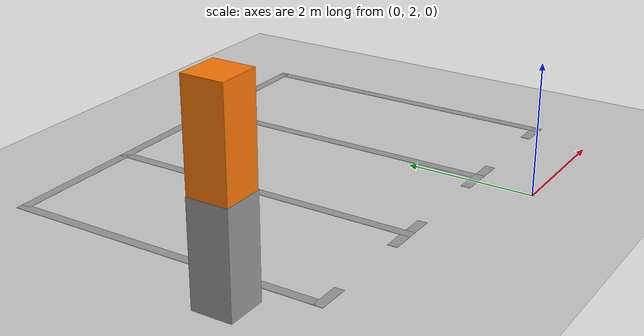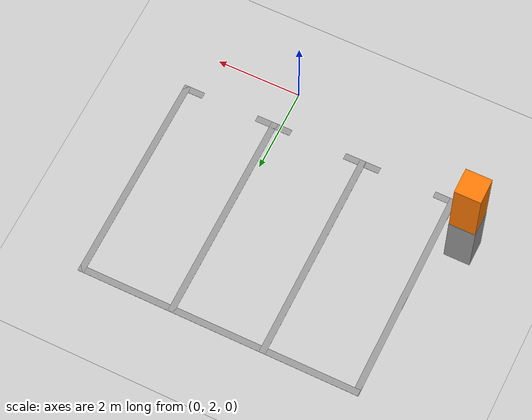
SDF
<sdf version="1.7">
 <world name="default">
  <model name="ground_plane">
   <static>1</static>
   <link name="link">
    <collision name="collision">
     <geometry><plane><normal>0 0 1</normal><size>100 100</size></plane></geometry>
     <surface><friction><ode><mu>100</mu><mu2>50</mu2></ode></friction></surface>
    </collision>
    <visual name="visual">
     <cast_shadows>0</cast_shadows>
     <geometry><plane><normal>0 0 1</normal><size>100 100</size></plane></geometry>
     <material>
      <script><uri>file://media/materials/scripts/gazebo.material</uri><name>Gazebo/Grey</name></script>
     </material>
    </visual>
   </link>
  </model>
  <model name="carport1_2">
   <pose>-1.3548 7.15384 0 0 -0 0</pose>
   <link name="Wall_105">
    <collision name="Wall_105_Collision">
     <geometry><box><size>0.61 0.6 1.5</size></box></geometry>
     <pose>0 0 0.75 0 -0 0</pose>
    </collision>
    <visual name="Wall_105_Visual">
     <pose>0 0 0.75 0 -0 0</pose>
     <geometry><box><size>0.61 0.6 1.5</size></box></geometry>
     <material>
      <script><uri>file://media/materials/scripts/gazebo.material</uri><name>Gazebo/Grey</name></script>
      <ambient>1 1 1 1</ambient>
     </material>
     <meta><layer>0</layer></meta>
    </visual>
    <pose>-3.47407 -3.2865 0 0 -0 0</pose>
   </link>
   <link name="Wall_116">
    <collision name="Wall_116_Collision">
     <geometry><box><size>5.1 0.15 0.005</size></box></geometry>
     <pose>0 0 0.0025 0 -0 0</pose>
    </collision>
    <visual name="Wall_116_Visual">
     <pose>0 0 0.0025 0 -0 0</pose>
     <geometry><box><size>5.1 0.15 0.005</size></box></geometry>
     <material>
      <script><uri>file://media/materials/scripts/gazebo.material</uri><name>Gazebo/Grey</name></script>
      <ambient>1 1 1 1</ambient>
     </material>
     <meta><layer>0</layer></meta>
    </visual>
    <pose>-2.82307 -1.7385 0 0 -0 1.5708</pose>
   </link>
   <link name="Wall_124">
    <collision name="Wall_124_Collision">
     <geometry><box><size>5.1 0.15 0.005</size></box></geometry>
     <pose>0 0 0.0025 0 -0 0</pose>
    </collision>
    <visual name="Wall_124_Visual">
     <pose>0 0 0.0025 0 -0 0</pose>
     <geometry><box><size>5.1 0.15 0.005</size></box></geometry>
     <material>
      <script><uri>file://media/materials/scripts/gazebo.material</uri><name>Gazebo/Grey</name></script>
      <ambient>1 1 1 1</ambient>
     </material>
     <meta><layer>0</layer></meta>
    </visual>
    <pose>3.70393 -1.7305 0 0 -0 1.5708</pose>
   </link>
   <link name="Wall_146">
    <collision name="Wall_146_Collision">
     <geometry><box><size>6.67711 0.15 0.005</size></box></geometry>
     <pose>0 0 0.0025 0 -0 0</pose>
    </collision>
    <visual name="Wall_146_Visual">
     <pose>0 0 0.0025 0 -0 0</pose>
     <geometry><box><size>6.67711 0.15 0.005</size></box></geometry>
     <material>
      <script><uri>file://media/materials/scripts/gazebo.material</uri><name>Gazebo/Grey</name></script>
      <ambient>1 1 1 1</ambient>
     </material>
     <meta><layer>0</layer></meta>
    </visual>
    <pose>0.440428 0.7405 0 0 -0 0.001226</pose>
   </link>
   <link name="Wall_168">
    <collision name="Wall_168_Collision">
     <geometry><box><size>5.1 0.15 0.005</size></box></geometry>
     <pose>0 0 0.0025 0 -0 0</pose>
    </collision>
    <visual name="Wall_168_Visual">
     <pose>0 0 0.0025 0 -0 0</pose>
     <geometry><box><size>5.1 0.15 0.005</size></box></geometry>
     <material>
      <script><uri>file://media/materials/scripts/gazebo.material</uri><name>Gazebo/Grey</name></script>
      <ambient>1 1 1 1</ambient>
     </material>
     <meta><layer>0</layer></meta>
    </visual>
    <pose>-0.64827 -1.73839 0 0 -0 1.57088</pose>
   </link>
   <link name="Wall_173">
    <collision name="Wall_173_Collision">
     <geometry><box><size>5.1 0.15 0.005</size></box></geometry>
     <pose>0 0 0.0025 0 -0 0</pose>
    </collision>
    <visual name="Wall_173_Visual">
     <pose>0 0 0.0025 0 -0 0</pose>
     <geometry><box><size>5.1 0.15 0.005</size></box></geometry>
     <material>
      <script><uri>file://media/materials/scripts/gazebo.material</uri><name>Gazebo/Grey</name></script>
      <ambient>1 1 1 1</ambient>
     </material>
     <meta><layer>0</layer></meta>
    </visual>
    <pose>1.52673 -1.73839 0 0 -0 1.57088</pose>
   </link>
   <link name="Wall_177">
    <collision name="Wall_177_Collision">
     <geometry><box><size>0.6 0.59 3</size></box></geometry>
     <pose>0 0 1.5 0 -0 0</pose>
    </collision>
    <visual name="Wall_177_Visual">
     <pose>0 0 1.5 0 -0 0</pose>
     <geometry><box><size>0.6 0.59 3</size></box></geometry>
     <material>
      <script><uri>file://media/materials/scripts/gazebo.material</uri><name>Gazebo/Grey</name></script>
      <ambient>0.996078 0.47451 0.0196078 1</ambient>
     </material>
     <meta><layer>0</layer></meta>
    </visual>
    <pose>-3.47407 -3.2865 0 0 -0 0</pose>
   </link>
   <link name="Wall_179">
    <collision name="Wall_179_Collision">
     <geometry><box><size>0.5 0.15 0.005</size></box></geometry>
     <pose>0 0 0.0025 0 -0 0</pose>
    </collision>
    <visual name="Wall_179_Visual">
     <pose>0 0 0.0025 0 -0 0</pose>
     <geometry><box><size>0.5 0.15 0.005</size></box></geometry>
     <material>
      <script><uri>file://media/materials/scripts/gazebo.material</uri><name>Gazebo/Grey</name></script>
      <ambient>1 1 1 1</ambient>
     </material>
     <meta><layer>0</layer></meta>
    </visual>
    <pose>-2.64807 -4.2135 0 0 -0 0</pose>
   </link>
   <link name="Wall_181">
    <collision name="Wall_181_Collision">
     <geometry><box><size>0.5 0.15 0.005</size></box></geometry>
     <pose>0 0 0.0025 0 -0 0</pose>
    </collision>
    <visual name="Wall_181_Visual">
     <pose>0 0 0.0025 0 -0 0</pose>
     <geometry><box><size>0.5 0.15 0.005</size></box></geometry>
     <material>
      <script><uri>file://media/materials/scripts/gazebo.material</uri><name>Gazebo/Grey</name></script>
      <ambient>1 1 1 1</ambient>
     </material>
     <meta><layer>0</layer></meta>
    </visual>
    <pose>-0.823072 -4.2135 0 0 -0 3.14159</pose>
   </link>
   <link name="Wall_183">
    <collision name="Wall_183_Collision">
     <geometry><box><size>0.5 0.15 0.005</size></box></geometry>
     <pose>0 0 0.0025 0 -0 0</pose>
    </collision>
    <visual name="Wall_183_Visual">
     <pose>0 0 0.0025 0 -0 0</pose>
     <geometry><box><size>0.5 0.15 0.005</size></box></geometry>
     <material>
      <script><uri>file://media/materials/scripts/gazebo.material</uri><name>Gazebo/Grey</name></script>
      <ambient>1 1 1 1</ambient>
     </material>
     <meta><layer>0</layer></meta>
    </visual>
    <pose>-0.473072 -4.2135 0 0 -0 0</pose>
   </link>
   <link name="Wall_185">
    <collision name="Wall_185_Collision">
     <geometry><box><size>0.5 0.15 0.005</size></box></geometry>
     <pose>0 0 0.0025 0 -0 0</pose>
    </collision>
    <visual name="Wall_185_Visual">
     <pose>0 0 0.0025 0 -0 0</pose>
     <geometry><box><size>0.5 0.15 0.005</size></box></geometry>
     <material>
      <script><uri>file://media/materials/scripts/gazebo.material</uri><name>Gazebo/Grey</name></script>
      <ambient>1 1 1 1</ambient>
     </material>
     <meta><layer>0</layer></meta>
    </visual>
    <pose>1.35193 -4.2135 0 0 -0 3.14159</pose>
   </link>
   <link name="Wall_187">
    <collision name="Wall_187_Collision">
     <geometry><box><size>0.5 0.15 0.005</size></box></geometry>
     <pose>0 0 0.0025 0 -0 0</pose>
    </collision>
    <visual name="Wall_187_Visual">
     <pose>0 0 0.0025 0 -0 0</pose>
     <geometry><box><size>0.5 0.15 0.005</size></box></geometry>
     <material>
      <script><uri>file://media/materials/scripts/gazebo.material</uri><name>Gazebo/Grey</name></script>
      <ambient>1 1 1 1</ambient>
     </material>
     <meta><layer>0</layer></meta>
    </visual>
    <pose>1.70193 -4.2135 0 0 -0 0</pose>
   </link>
   <link name="Wall_189">
    <collision name="Wall_189_Collision">
     <geometry><box><size>0.5 0.15 0.005</size></box></geometry>
     <pose>0 0 0.0025 0 -0 0</pose>
    </collision>
    <visual name="Wall_189_Visual">
     <pose>0 0 0.0025 0 -0 0</pose>
     <geometry><box><size>0.5 0.15 0.005</size></box></geometry>
     <material>
      <script><uri>file://media/materials/scripts/gazebo.material</uri><name>Gazebo/Grey</name></script>
      <ambient>1 1 1 1</ambient>
     </material>
     <meta><layer>0</layer></meta>
    </visual>
    <pose>3.52893 -4.2055 0 0 -0 3.14159</pose>
   </link>
   <static>1</static>
  </model>
 </world>
</sdf>
